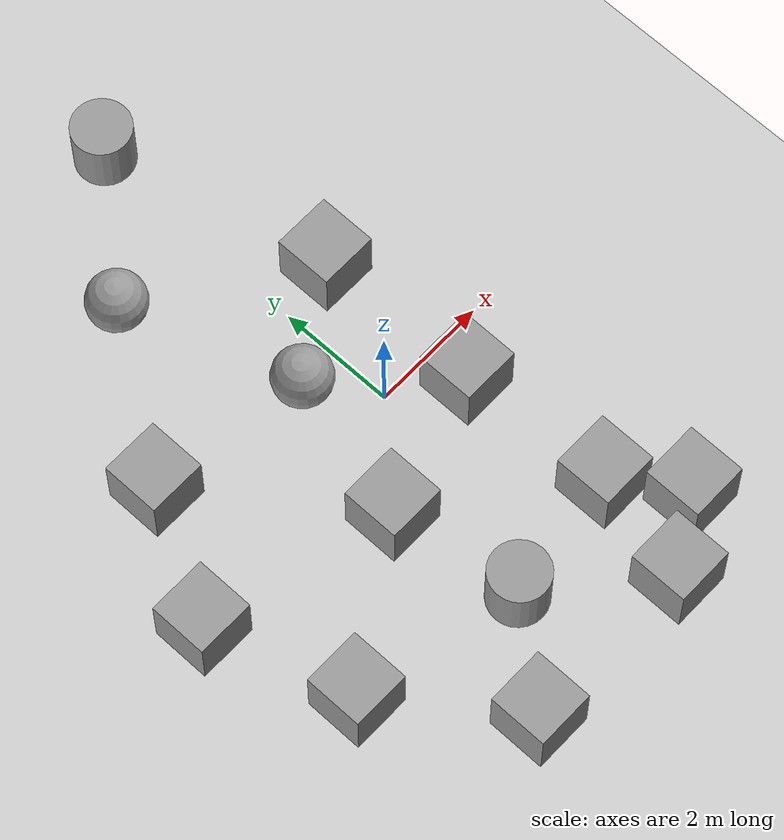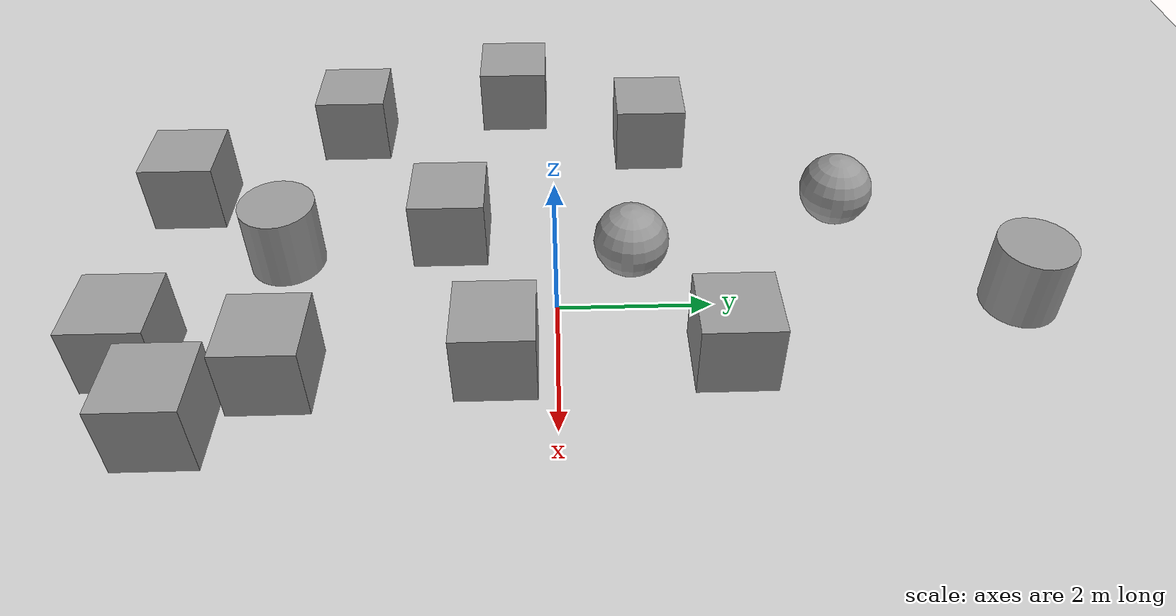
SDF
<sdf version="1.7">
 <world name="default">
  <light name="sun" type="directional">
   <pose>0 0 10 0 -0 0</pose>
   <diffuse>0.8 0.8 0.8 1</diffuse>
   <specular>0.2 0.2 0.2 1</specular>
   <attenuation>
    <range>1000</range>
    <constant>0.9</constant>
    <linear>0.01</linear>
    <quadratic>0.001</quadratic>
   </attenuation>
   <direction>-0.5 0.1 -0.9</direction>
   <spot><inner_angle>0</inner_angle><outer_angle>0</outer_angle><falloff>0</falloff></spot>
  </light>
  <model name="ground_plane">
   <static>1</static>
   <link name="link">
    <collision name="collision">
     <geometry><plane><normal>0 0 1</normal><size>100 100</size></plane></geometry>
     <surface>
      <contact><collide_bitmask>65535</collide_bitmask></contact>
      <friction><ode><mu>100</mu><mu2>50</mu2></ode></friction>
     </surface>
    </collision>
    <visual name="visual">
     <cast_shadows>0</cast_shadows>
     <geometry><plane><normal>0 0 1</normal><size>100 100</size></plane></geometry>
     <material>
      <script><uri>file://media/materials/scripts/gazebo.material</uri><name>Gazebo/Grey</name></script>
     </material>
    </visual>
   </link>
  </model>
  <gravity>0 0 -9.8</gravity>
  <magnetic_field>6e-06 2.3e-05 -4.2e-05</magnetic_field>
  <atmosphere type="adiabatic"/>
  <physics type="ode">
   <max_step_size>0.001</max_step_size>
   <real_time_factor>1</real_time_factor>
   <real_time_update_rate>1000</real_time_update_rate>
  </physics>
  <scene><ambient>0.4 0.4 0.4 1</ambient><background>0.7 0.7 0.7 1</background><shadows>1</shadows></scene>
  <spherical_coordinates>
   <surface_model>EARTH_WGS84</surface_model>
   <latitude_deg>0</latitude_deg>
   <longitude_deg>0</longitude_deg>
   <elevation>0</elevation>
   <heading_deg>0</heading_deg>
  </spherical_coordinates>
  <model name="unit_box">
   <pose>1.02421 -0.738382 0.499995 0 1e-05 0</pose>
   <link name="link">
    <inertial>
     <mass>1</mass>
     <inertia>
      <ixx>0.166667</ixx>
      <ixy>0</ixy>
      <ixz>0</ixz>
      <iyy>0.166667</iyy>
      <iyz>0</iyz>
      <izz>0.166667</izz>
     </inertia>
    </inertial>
    <collision name="collision"><geometry><box><size>1 1 1</size></box></geometry></collision>
    <visual name="visual">
     <geometry><box><size>1 1 1</size></box></geometry>
     <material>
      <script><name>Gazebo/Grey</name><uri>file://media/materials/scripts/gazebo.material</uri></script>
     </material>
    </visual>
   </link>
  </model>
  <model name="unit_box_0">
   <pose>-1.36042 -1.43555 0.499995 -1e-05 -0 -0</pose>
   <link name="link">
    <inertial>
     <mass>1</mass>
     <inertia>
      <ixx>0.166667</ixx>
      <ixy>0</ixy>
      <ixz>0</ixz>
      <iyy>0.166667</iyy>
      <iyz>0</iyz>
      <izz>0.166667</izz>
     </inertia>
    </inertial>
    <collision name="collision"><geometry><box><size>1 1 1</size></box></geometry></collision>
    <visual name="visual">
     <geometry><box><size>1 1 1</size></box></geometry>
     <material>
      <script><name>Gazebo/Grey</name><uri>file://media/materials/scripts/gazebo.material</uri></script>
     </material>
    </visual>
   </link>
  </model>
  <model name="unit_sphere">
   <pose>-0.743427 0.994435 0.5 0 -0 0</pose>
   <link name="link">
    <inertial>
     <mass>1</mass>
     <inertia><ixx>0.1</ixx><ixy>0</ixy><ixz>0</ixz><iyy>0.1</iyy><iyz>0</iyz><izz>0.1</izz></inertia>
    </inertial>
    <collision name="collision"><geometry><sphere><radius>0.5</radius></sphere></geometry></collision>
    <visual name="visual">
     <geometry><sphere><radius>0.5</radius></sphere></geometry>
     <material>
      <script><name>Gazebo/Grey</name><uri>file://media/materials/scripts/gazebo.material</uri></script>
     </material>
    </visual>
   </link>
  </model>
  <model name="unit_cylinder">
   <pose>-1.02003 -3.64781 0.499992 -3e-06 3e-06 0</pose>
   <link name="link">
    <inertial>
     <mass>1</mass>
     <inertia><ixx>0.145833</ixx><ixy>0</ixy><ixz>0</ixz><iyy>0.145833</iyy><iyz>0</iyz><izz>0.125</izz></inertia>
    </inertial>
    <collision name="collision">
     <geometry><cylinder><radius>0.5</radius><length>1</length></cylinder></geometry>
    </collision>
    <visual name="visual">
     <geometry><cylinder><radius>0.5</radius><length>1</length></cylinder></geometry>
     <material>
      <script><name>Gazebo/Grey</name><uri>file://media/materials/scripts/gazebo.material</uri></script>
     </material>
    </visual>
   </link>
  </model>
  <model name="unit_box_1">
   <pose>1.1617 -3.37825 0.499995 0 1e-05 0</pose>
   <link name="link">
    <inertial>
     <mass>1</mass>
     <inertia>
      <ixx>0.166667</ixx>
      <ixy>0</ixy>
      <ixz>0</ixz>
      <iyy>0.166667</iyy>
      <iyz>0</iyz>
      <izz>0.166667</izz>
     </inertia>
    </inertial>
    <collision name="collision"><geometry><box><size>1 1 1</size></box></geometry></collision>
    <visual name="visual">
     <geometry><box><size>1 1 1</size></box></geometry>
     <material>
      <script><name>Gazebo/Grey</name><uri>file://media/materials/scripts/gazebo.material</uri></script>
     </material>
    </visual>
   </link>
  </model>
  <model name="unit_box_2">
   <pose>0.973619 2.13618 0.499995 -1e-05 -0 -0</pose>
   <link name="link">
    <inertial>
     <mass>1</mass>
     <inertia>
      <ixx>0.166667</ixx>
      <ixy>0</ixy>
      <ixz>0</ixz>
      <iyy>0.166667</iyy>
      <iyz>0</iyz>
      <izz>0.166667</izz>
     </inertia>
    </inertial>
    <collision name="collision"><geometry><box><size>1 1 1</size></box></geometry></collision>
    <visual name="visual">
     <geometry><box><size>1 1 1</size></box></geometry>
     <material>
      <script><name>Gazebo/Grey</name><uri>file://media/materials/scripts/gazebo.material</uri></script>
     </material>
    </visual>
   </link>
  </model>
  <model name="unit_box_3">
   <pose>-3.47248 1.42204 0.499995 0 1e-05 0</pose>
   <link name="link">
    <inertial>
     <mass>1</mass>
     <inertia>
      <ixx>0.166667</ixx>
      <ixy>0</ixy>
      <ixz>0</ixz>
      <iyy>0.166667</iyy>
      <iyz>0</iyz>
      <izz>0.166667</izz>
     </inertia>
    </inertial>
    <collision name="collision"><geometry><box><size>1 1 1</size></box></geometry></collision>
    <visual name="visual">
     <geometry><box><size>1 1 1</size></box></geometry>
     <material>
      <script><name>Gazebo/Grey</name><uri>file://media/materials/scripts/gazebo.material</uri></script>
     </material>
    </visual>
   </link>
  </model>
  <model name="unit_box_4">
   <pose>-4.58291 -0.638541 0.499995 -1e-05 -0 -0</pose>
   <link name="link">
    <inertial>
     <mass>1</mass>
     <inertia>
      <ixx>0.166667</ixx>
      <ixy>0</ixy>
      <ixz>0</ixz>
      <iyy>0.166667</iyy>
      <iyz>0</iyz>
      <izz>0.166667</izz>
     </inertia>
    </inertial>
    <collision name="collision"><geometry><box><size>1 1 1</size></box></geometry></collision>
    <visual name="visual">
     <geometry><box><size>1 1 1</size></box></geometry>
     <material>
      <script><name>Gazebo/Grey</name><uri>file://media/materials/scripts/gazebo.material</uri></script>
     </material>
    </visual>
   </link>
  </model>
  <model name="unit_box_5">
   <pose>-3.85339 -3.04031 0.499995 0 1e-05 0</pose>
   <link name="link">
    <inertial>
     <mass>1</mass>
     <inertia>
      <ixx>0.166667</ixx>
      <ixy>0</ixy>
      <ixz>0</ixz>
      <iyy>0.166667</iyy>
      <iyz>0</iyz>
      <izz>0.166667</izz>
     </inertia>
    </inertial>
    <collision name="collision"><geometry><box><size>1 1 1</size></box></geometry></collision>
    <visual name="visual">
     <geometry><box><size>1 1 1</size></box></geometry>
     <material>
      <script><name>Gazebo/Grey</name><uri>file://media/materials/scripts/gazebo.material</uri></script>
     </material>
    </visual>
   </link>
  </model>
  <model name="unit_sphere_0">
   <pose>-1.74836 3.93619 0.5 0 -0 0</pose>
   <link name="link">
    <inertial>
     <mass>1</mass>
     <inertia><ixx>0.1</ixx><ixy>0</ixy><ixz>0</ixz><iyy>0.1</iyy><iyz>0</iyz><izz>0.1</izz></inertia>
    </inertial>
    <collision name="collision"><geometry><sphere><radius>0.5</radius></sphere></geometry></collision>
    <visual name="visual">
     <geometry><sphere><radius>0.5</radius></sphere></geometry>
     <material>
      <script><name>Gazebo/Grey</name><uri>file://media/materials/scripts/gazebo.material</uri></script>
     </material>
    </visual>
   </link>
  </model>
  <model name="unit_cylinder_0">
   <pose>0.054829 6.00841 0.499992 -3e-06 -4e-06 -0</pose>
   <link name="link">
    <inertial>
     <mass>1</mass>
     <inertia><ixx>0.145833</ixx><ixy>0</ixy><ixz>0</ixz><iyy>0.145833</iyy><iyz>0</iyz><izz>0.125</izz></inertia>
    </inertial>
    <collision name="collision">
     <geometry><cylinder><radius>0.5</radius><length>1</length></cylinder></geometry>
    </collision>
    <visual name="visual">
     <geometry><cylinder><radius>0.5</radius><length>1</length></cylinder></geometry>
     <material>
      <script><name>Gazebo/Grey</name><uri>file://media/materials/scripts/gazebo.material</uri></script>
     </material>
    </visual>
   </link>
  </model>
  <model name="unit_box_6">
   <pose>-2.2674 -5.17868 0.499995 -1e-05 -0 -0</pose>
   <link name="link">
    <inertial>
     <mass>1</mass>
     <inertia>
      <ixx>0.166667</ixx>
      <ixy>0</ixy>
      <ixz>0</ixz>
      <iyy>0.166667</iyy>
      <iyz>0</iyz>
      <izz>0.166667</izz>
     </inertia>
    </inertial>
    <collision name="collision"><geometry><box><size>1 1 1</size></box></geometry></collision>
    <visual name="visual">
     <geometry><box><size>1 1 1</size></box></geometry>
     <material>
      <script><name>Gazebo/Grey</name><uri>file://media/materials/scripts/gazebo.material</uri></script>
     </material>
    </visual>
   </link>
  </model>
  <model name="unit_box_7">
   <pose>0.766011 -5.19258 0.499995 0 1e-05 0</pose>
   <link name="link">
    <inertial>
     <mass>1</mass>
     <inertia>
      <ixx>0.166667</ixx>
      <ixy>0</ixy>
      <ixz>0</ixz>
      <iyy>0.166667</iyy>
      <iyz>0</iyz>
      <izz>0.166667</izz>
     </inertia>
    </inertial>
    <collision name="collision"><geometry><box><size>1 1 1</size></box></geometry></collision>
    <visual name="visual">
     <geometry><box><size>1 1 1</size></box></geometry>
     <material>
      <script><name>Gazebo/Grey</name><uri>file://media/materials/scripts/gazebo.material</uri></script>
     </material>
    </visual>
   </link>
  </model>
  <model name="unit_box_8">
   <pose>1.91806 -4.46863 0.499995 -1e-05 -0 0</pose>
   <link name="link">
    <inertial>
     <mass>1</mass>
     <inertia>
      <ixx>0.166667</ixx>
      <ixy>0</ixy>
      <ixz>0</ixz>
      <iyy>0.166667</iyy>
      <iyz>0</iyz>
      <izz>0.166667</izz>
     </inertia>
    </inertial>
    <collision name="collision"><geometry><box><size>1 1 1</size></box></geometry></collision>
    <visual name="visual">
     <geometry><box><size>1 1 1</size></box></geometry>
     <material>
      <script><name>Gazebo/Grey</name><uri>file://media/materials/scripts/gazebo.material</uri></script>
     </material>
    </visual>
   </link>
  </model>
 </world>
</sdf>
